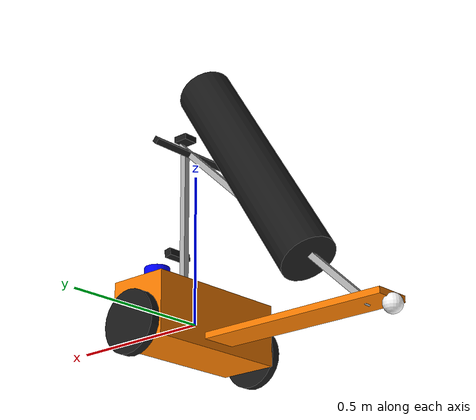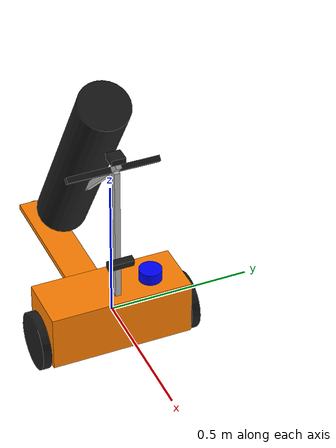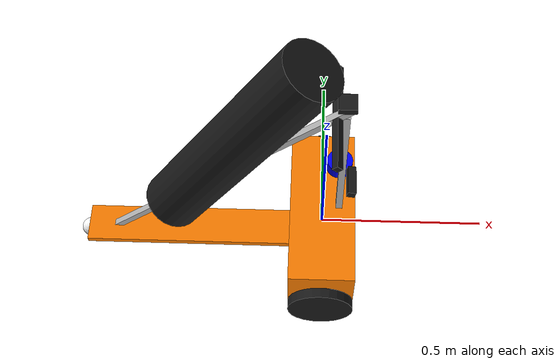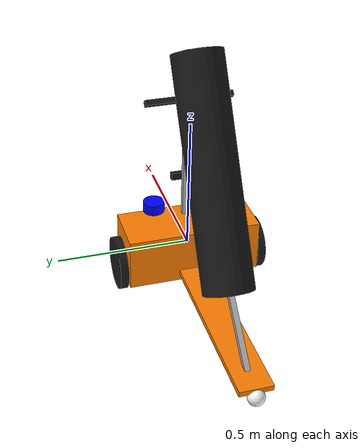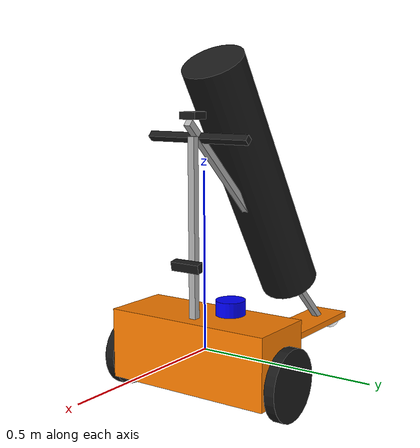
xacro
<?xml version="1.0"?>
<robot name="golf_trolley" xmlns:xacro="http://www.ros.org/wiki/xacro">

  <!-- ═══════════════════════════════════
       PROPERTIES
  ═══════════════════════════════════ -->
  <xacro:property name="wheel_radius" value="0.1"/>
  <xacro:property name="wheel_width" value="0.03"/>
  <xacro:property name="wheel_separation" value="0.54"/>
  <xacro:property name="base_mass" value="11.35"/>
  <xacro:property name="wheel_mass" value="1.0"/>
  <xacro:property name="bag_mass" value="9.0"/>

  <!-- ═══════════════════════════════════
       INERTIA MACROS
  ═══════════════════════════════════ -->
  <xacro:macro name="box_inertia" params="m x y z">
    <inertial>
      <mass value="${m}"/>
      <inertia ixx="${(m/12)*(y*y+z*z)}" ixy="0" ixz="0"
               iyy="${(m/12)*(x*x+z*z)}" iyz="0"
               izz="${(m/12)*(x*x+y*y)}"/>
    </inertial>
  </xacro:macro>

  <xacro:macro name="cylinder_inertia" params="m r l">
    <inertial>
      <mass value="${m}"/>
      <inertia ixx="${(m/12)*(3*r*r+l*l)}" ixy="0" ixz="0"
               iyy="${(m/12)*(3*r*r+l*l)}" iyz="0"
               izz="${(m/2)*(r*r)}"/>
    </inertial>
  </xacro:macro>

  <xacro:macro name="sphere_inertia" params="m r">
    <inertial>
      <mass value="${m}"/>
      <inertia ixx="${(2/5)*m*r*r}" ixy="0" ixz="0"
               iyy="${(2/5)*m*r*r}" iyz="0"
               izz="${(2/5)*m*r*r}"/>
    </inertial>
  </xacro:macro>

  <!-- ═══════════════════════════════════
       MATERIALS
  ═══════════════════════════════════ -->
  <material name="orange">
    <color rgba="1.0 0.5 0.0 1"/>
  </material>
  <material name="dark">
    <color rgba="0.1 0.1 0.1 1"/>
  </material>
  <material name="grey">
    <color rgba="0.7 0.7 0.7 1"/>
  </material>
  <material name="blue">
    <color rgba="0 0 1 1"/>
  </material>
  <material name="white">
    <color rgba="1 1 1 1"/>
  </material>

  <!-- ═══════════════════════════════════
       DUMMY ROOT LINK
  ═══════════════════════════════════ -->
  <link name="base_footprint"/>

  <joint name="base_footprint_joint" type="fixed">
    <parent link="base_footprint"/>
    <child link="base_link"/>
    <origin xyz="0 0 0" rpy="0 0 0"/>
  </joint>

  <!-- ═══════════════════════════════════
       BASE LINK
  ═══════════════════════════════════ -->
  <link name="base_link">
    <xacro:box_inertia m="${base_mass}" x="0.2" y="0.5" z="0.2"/>
    <visual>
      <geometry><box size="0.2 0.5 0.2"/></geometry>
      <material name="orange"/>
    </visual>
    <collision>
      <geometry><box size="0.2 0.5 0.2"/></geometry>
    </collision>
  </link>

  <gazebo reference="base_link">
    <material>Gazebo/Orange</material>
  </gazebo>

  <!-- ═══════════════════════════════════
       LEFT WHEEL
  ═══════════════════════════════════ -->
  <link name="left_wheel">
    <xacro:cylinder_inertia m="${wheel_mass}" r="${wheel_radius}" l="${wheel_width}"/>
    <visual>
      <origin rpy="1.5707 0 0"/>
      <geometry><cylinder length="${wheel_width}" radius="${wheel_radius}"/></geometry>
      <material name="dark"/>
    </visual>
    <collision>
      <origin rpy="1.5707 0 0"/>
      <geometry><cylinder length="${wheel_width}" radius="${wheel_radius}"/></geometry>
    </collision>
  </link>

  <joint name="left_wheel_joint" type="continuous">
    <parent link="base_link"/>
    <child link="left_wheel"/>
    <origin xyz="0 -0.27 -0.05"/>
    <axis xyz="0 1 0"/>
    <dynamics damping="0.2"/>
  </joint>

  <gazebo reference="left_wheel">
    <material>Gazebo/DarkGrey</material>
    <mu1>1.0</mu1>
    <mu2>1.0</mu2>
  </gazebo>

  <!-- ═══════════════════════════════════
       RIGHT WHEEL
  ═══════════════════════════════════ -->
  <link name="right_wheel">
    <xacro:cylinder_inertia m="${wheel_mass}" r="${wheel_radius}" l="${wheel_width}"/>
    <visual>
      <origin rpy="1.5707 0 0"/>
      <geometry><cylinder length="${wheel_width}" radius="${wheel_radius}"/></geometry>
      <material name="dark"/>
    </visual>
    <collision>
      <origin rpy="1.5707 0 0"/>
      <geometry><cylinder length="${wheel_width}" radius="${wheel_radius}"/></geometry>
    </collision>
  </link>

  <joint name="right_wheel_joint" type="continuous">
    <parent link="base_link"/>
    <child link="right_wheel"/>
    <origin xyz="0 0.27 -0.05"/>
    <axis xyz="0 1 0"/>
    <dynamics damping="0.2"/>
  </joint>

  <gazebo reference="right_wheel">
    <material>Gazebo/DarkGrey</material>
    <mu1>1.0</mu1>
    <mu2>1.0</mu2>
  </gazebo>

  <!-- ═══════════════════════════════════
       STEM
  ═══════════════════════════════════ -->
  <link name="stem_link">
    <xacro:box_inertia m="1.0" x="0.7" y="0.12" z="0.02"/>
    <visual>
      <geometry><box size="0.7 0.12 0.02"/></geometry>
      <material name="orange"/>
    </visual>
    <collision>
      <geometry><box size="0.7 0.12 0.02"/></geometry>
    </collision>
  </link>

  <joint name="stem_joint" type="fixed">
    <parent link="base_link"/>
    <child link="stem_link"/>
    <origin xyz="-0.4 0 -0.065" rpy="0 0 0"/>
  </joint>

  <gazebo reference="stem_link">
    <material>Gazebo/Orange</material>
  </gazebo>

  <!-- ═══════════════════════════════════
       REAR CASTER
  ═══════════════════════════════════ -->
  <link name="caster_rear">
    <xacro:sphere_inertia m="0.5" r="0.03"/>
    <visual>
      <geometry><sphere radius="0.03"/></geometry>
      <material name="white"/>
    </visual>
    <collision>
      <geometry><sphere radius="0.03"/></geometry>
    </collision>
  </link>

  <joint name="caster_rear_joint" type="fixed">
    <parent link="stem_link"/>
    <child link="caster_rear"/>
    <origin xyz="-0.35 0 -0.025" rpy="0 0 0"/>
  </joint>

  <gazebo reference="caster_rear">
    <material>Gazebo/White</material>
    <mu1>0.0</mu1>
    <mu2>0.0</mu2>
  </gazebo>

  <!-- ═══════════════════════════════════
       UPRIGHT
  ═══════════════════════════════════ -->
  <link name="upright_link">
    <xacro:box_inertia m="0.8" x="0.02" y="0.02" z="0.55"/>
    <visual>
      <geometry><box size="0.02 0.02 0.55"/></geometry>
      <material name="grey"/>
    </visual>
    <collision>
      <geometry><box size="0.02 0.02 0.55"/></geometry>
    </collision>
  </link>

  <joint name="upright_joint" type="fixed">
    <parent link="base_link"/>
    <child link="upright_link"/>
    <origin xyz="0.05 0 0.32" rpy="0 0 0"/>
  </joint>

  <gazebo reference="upright_link">
    <material>Gazebo/Grey</material>
  </gazebo>

  <!-- ═══════════════════════════════════
       HANDLE
  ═══════════════════════════════════ -->
  <link name="handle_link">
    <xacro:box_inertia m="0.7" x="1.022" y="0.02" z="0.02"/>
    <visual>
      <geometry><box size="1.022 0.02 0.02"/></geometry>
      <material name="grey"/>
    </visual>
    <collision>
      <geometry><box size="1.022 0.02 0.02"/></geometry>
    </collision>
  </link>

  <joint name="handle_joint" type="fixed">
    <parent link="upright_link"/>
    <child link="handle_link"/>
    <origin xyz="-0.35 0 -0.04" rpy="0 -0.76 0"/>
  </joint>

  <gazebo reference="handle_link">
    <material>Gazebo/Grey</material>
  </gazebo>

  <!-- ═══════════════════════════════════
       GRIP
  ═══════════════════════════════════ -->
  <link name="grip_link">
    <xacro:box_inertia m="0.2" x="0.02" y="0.32" z="0.02"/>
    <visual>
      <geometry><box size="0.02 0.32 0.02"/></geometry>
      <material name="dark"/>
    </visual>
    <collision>
      <geometry><box size="0.02 0.32 0.02"/></geometry>
    </collision>
  </link>

  <joint name="grip_joint" type="fixed">
    <parent link="handle_link"/>
    <child link="grip_link"/>
    <origin xyz="0.45 0 0" rpy="0 0 0"/>
  </joint>

  <gazebo reference="grip_link">
    <material>Gazebo/DarkGrey</material>
  </gazebo>

  <!-- ═══════════════════════════════════
       LIDAR
  ═══════════════════════════════════ -->
  <link name="lidar_link">
    <xacro:cylinder_inertia m="0.2" r="0.04" l="0.04"/>
    <visual>
      <geometry><cylinder length="0.04" radius="0.04"/></geometry>
      <material name="blue"/>
    </visual>
    <collision>
      <geometry><cylinder length="0.04" radius="0.04"/></geometry>
    </collision>
  </link>

  <joint name="lidar_joint" type="fixed">
    <parent link="base_link"/>
    <child link="lidar_link"/>
    <origin xyz="0.05 0.12 0.15" rpy="0 0.01745 0"/>
  </joint>

  <gazebo reference="lidar_link">
    <material>Gazebo/Blue</material>
    <sensor name="lidar" type="gpu_lidar">
      <update_rate>20</update_rate>
      <topic>/scan</topic>
      <gz_frame_id>lidar_link</gz_frame_id>
      <lidar>
        <scan>
          <horizontal>
            <samples>180</samples>
            <resolution>1</resolution>
            <min_angle>-${pi/2}</min_angle>
            <max_angle>${pi/2}</max_angle>
          </horizontal>
        </scan>
        <range>
          <min>0.3</min>
          <max>30.0</max>
        </range>
      </lidar>
      <always_on>true</always_on>
      <visualize>false</visualize>
    </sensor>
  </gazebo>

<!-- ═══════════════════════════════════
     RGB-D CAMERA
════════════════════════════════════ -->
<link name="rgbd_camera_link">
  <xacro:box_inertia m="0.2" x="0.025" y="0.09" z="0.025"/>

  <visual>
    <geometry><box size="0.025 0.09 0.025"/></geometry>
    <material name="dark"/>
  </visual>

  <collision>
    <geometry><box size="0.025 0.09 0.025"/></geometry>
  </collision>
</link>

<joint name="rgbd_camera_joint" type="fixed">
  <parent link="base_link"/>
  <child link="rgbd_camera_link"/>
  <!-- front camera, slightly tilted down -->
  <origin xyz="0.08 0 0.25" rpy="0 0.2 0"/>
</joint>

<gazebo reference="rgbd_camera_link">
  <material>Gazebo/DarkGrey</material>

  <!-- RGB output -->
  <sensor name="rgbd_rgb_camera" type="camera">
    <update_rate>10</update_rate>
    <topic>/rgbd_camera/image_raw</topic>
    <gz_frame_id>rgbd_camera_link</gz_frame_id>

    <camera>
      <horizontal_fov>1.5184</horizontal_fov>
      <image>
        <width>640</width>
        <height>480</height>
        <format>R8G8B8</format>
      </image>
      <clip>
        <near>0.1</near>
        <far>15.0</far>
      </clip>
    </camera>

    <always_on>true</always_on>
    <visualize>false</visualize>
  </sensor>

  <!-- Depth output -->
  <sensor name="rgbd_depth_camera" type="depth_camera">
    <update_rate>10</update_rate>
    <topic>/rgbd_camera/depth_image</topic>
    <gz_frame_id>rgbd_camera_link</gz_frame_id>

    <camera>
      <horizontal_fov>1.5184</horizontal_fov>
      <image>
        <width>640</width>
        <height>480</height>
        <format>R_FLOAT32</format>
      </image>
      <clip>
        <near>0.1</near>
        <far>15.0</far>
      </clip>
    </camera>

    <always_on>true</always_on>
    <visualize>false</visualize>
  </sensor>

</gazebo>

  <!-- ═══════════════════════════════════
       IMU
  ═══════════════════════════════════ -->
  <link name="imu_link">
    <xacro:box_inertia m="0.05" x="0.02" y="0.02" z="0.02"/>
    <visual>
      <geometry><box size="0.02 0.02 0.02"/></geometry>
      <material name="dark"/>
    </visual>
    <collision>
      <geometry><box size="0.02 0.02 0.02"/></geometry>
    </collision>
  </link>

  <joint name="imu_joint" type="fixed">
    <parent link="base_link"/>
    <child link="imu_link"/>
    <origin xyz="0 0 0.07" rpy="0 0 0"/>
  </joint>

  <gazebo reference="imu_link">
    <sensor name="imu" type="imu">
      <always_on>true</always_on>
      <update_rate>100</update_rate>
      <topic>/imu/data</topic>
      <gz_frame_id>imu_link</gz_frame_id>
    </sensor>
  </gazebo>

  <!-- ═══════════════════════════════════
       GOLF BAG PAYLOAD
  ═══════════════════════════════════ -->
  <link name="golf_bag_link">
    <xacro:cylinder_inertia m="${bag_mass}" r="0.09" l="0.8"/>

    <visual>
      <geometry>
        <cylinder length="0.8" radius="0.09"/>
      </geometry>
      <material name="dark"/>
    </visual>

    <collision>
      <geometry>
        <cylinder length="0.8" radius="0.09"/>
      </geometry>
    </collision>
  </link>

  <joint name="golf_bag_joint" type="fixed">
    <parent link="base_link"/>
    <child link="golf_bag_link"/>
    <!-- xyz = bag position, rpy = bag leaning angle -->
    <origin xyz="-0.25 0 0.45" rpy="0 0.55 0"/>
  </joint>

  <gazebo reference="golf_bag_link">
    <material>Gazebo/DarkGrey</material>
  </gazebo>

    <!-- ═══════════════════════════════════
       SIMULATED GPS / NAVSAT
  ═══════════════════════════════════ -->
  <link name="gps_link">
    <xacro:box_inertia m="0.05" x="0.05" y="0.05" z="0.02"/>

    <visual>
      <geometry>
        <box size="0.05 0.05 0.02"/>
      </geometry>
      <material name="dark"/>
    </visual>

    <collision>
      <geometry>
        <box size="0.05 0.05 0.02"/>
      </geometry>
    </collision>
  </link>

  <joint name="gps_joint" type="fixed">
    <parent link="base_link"/>
    <child link="gps_link"/>

    <!-- GPS antenna mounted above the trolley -->
    <origin xyz="0.05 0 0.65" rpy="0 0 0"/>
  </joint>

  <gazebo reference="gps_link">
    <material>Gazebo/DarkGrey</material>

    <sensor name="gps_sensor" type="navsat">
      <always_on>true</always_on>
      <update_rate>10.0</update_rate>
      <topic>/gps/fix</topic>
      <gz_frame_id>gps_link</gz_frame_id>
    </sensor>
  </gazebo>

 <!-- ═══════════════════════════════════
     DIFF DRIVE PLUGIN
═══════════════════════════════════ -->
<gazebo>
  <plugin filename="gz-sim-diff-drive-system"
          name="gz::sim::systems::DiffDrive">

    <left_joint>right_wheel_joint</left_joint>
    <right_joint>left_wheel_joint</right_joint>

    <wheel_separation>${wheel_separation}</wheel_separation>
    <wheel_radius>${wheel_radius}</wheel_radius>

    <max_linear_acceleration>1.0</max_linear_acceleration>
    <min_linear_acceleration>-1.0</min_linear_acceleration>
    <max_angular_acceleration>2.0</max_angular_acceleration>
    <min_angular_acceleration>-2.0</min_angular_acceleration>

    <topic>/cmd_vel_nav</topic>

    <odom_topic>/odom</odom_topic>
    <tf_topic>/tf</tf_topic>

    <frame_id>odom</frame_id>
    <child_frame_id>base_link</child_frame_id>

    <odom_publish_frequency>20</odom_publish_frequency>

  </plugin>
</gazebo>

  <!-- ═══════════════════════════════════
       JOINT STATE PUBLISHER PLUGIN
  ═══════════════════════════════════ -->
  <gazebo>
    <plugin filename="gz-sim-joint-state-publisher-system"
            name="gz::sim::systems::JointStatePublisher">
      <topic>/joint_states</topic>
    </plugin>
  </gazebo>

</robot>
